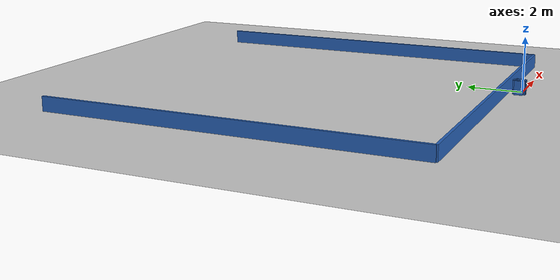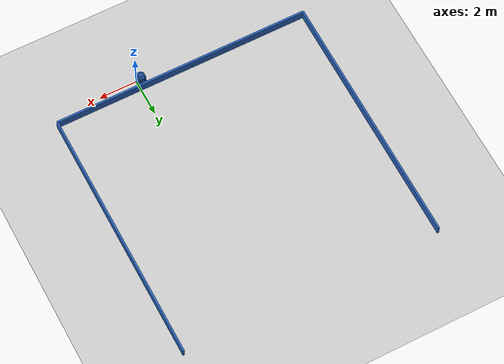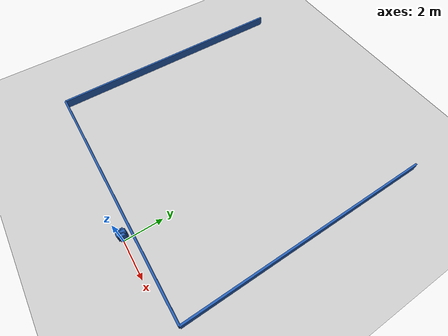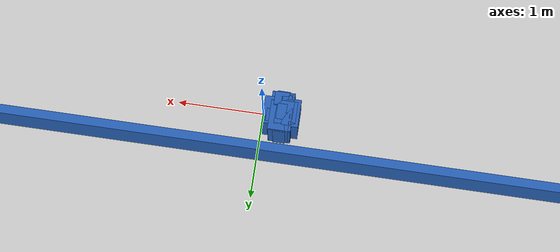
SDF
<?xml version="1.0" ?>
    <sdf version="1.5">
      <world name="default">
        <!-- A global light source -->
        <include>
          <uri>model://sun</uri>
        </include>
        <!-- A ground plane -->
        <include>
          <uri>model://ground_plane</uri>
        </include>

    <model name='libopen_space_final_T2B_67_47'>
      <static>1</static>
      <pose frame=''>-0.225000 0.075000 0.000000 0.000000 0.000000 0.000000</pose>
      <link name='link'>
        <inertial>
          <mass>1</mass>
          <inertia>
            <ixx>0.145833</ixx>
            <ixy>0</ixy>
            <ixz>0</ixz>
            <iyy>0.145833</iyy>
            <iyz>0</iyz>
            <izz>0.125</izz>
          </inertia>
        </inertial>
        <collision name='collision'>
          <geometry>
            <box>
              <size>0.20 0.15 1</size>
            </box>
          </geometry>
          <max_contacts>10</max_contacts>
          <surface>
            <contact>
              <ode/>
            </contact>
            <bounce/>
            <friction>
              <torsional>
                <ode/>
              </torsional>
              <ode/>
            </friction>
          </surface>
        </collision>
        <visual name='visual'>
          <geometry>
            <box>
              <size>0.20 0.15 1</size>
            </box>
          </geometry>
	    <material>
              <ambient>0.152000 0.379000 0.720000 1</ambient>
	      <diffuse>0.152000 0.379000 0.720000 1</diffuse>
          </material>
          <material>
            <script>
              <name>Gazebo/Grey</name>
              <uri>file://media/materials/scripts/gazebo.material</uri>
            </script>
          </material>
        </visual>
        <self_collide>0</self_collide>
        <kinematic>0</kinematic>
        <gravity>1</gravity>
      </link>
      <plugin name='libopen_space_final_T2B_67_47' filename='libopen_space_final_T2B_67_47.so'/>
    </model>

    <model name='libopen_space_final_T2B_113_82'>
      <static>1</static>
      <pose frame=''>-0.225000 0.075000 0.000000 0.000000 0.000000 0.000000</pose>
      <link name='link'>
        <inertial>
          <mass>1</mass>
          <inertia>
            <ixx>0.145833</ixx>
            <ixy>0</ixy>
            <ixz>0</ixz>
            <iyy>0.145833</iyy>
            <iyz>0</iyz>
            <izz>0.125</izz>
          </inertia>
        </inertial>
        <collision name='collision'>
          <geometry>
            <box>
              <size>0.19 0.40 1</size>
            </box>
          </geometry>
          <max_contacts>10</max_contacts>
          <surface>
            <contact>
              <ode/>
            </contact>
            <bounce/>
            <friction>
              <torsional>
                <ode/>
              </torsional>
              <ode/>
            </friction>
          </surface>
        </collision>
        <visual name='visual'>
          <geometry>
            <box>
              <size>0.19 0.40 1</size>
            </box>
          </geometry>
	    <material>
              <ambient>0.152000 0.379000 0.720000 1</ambient>
	      <diffuse>0.152000 0.379000 0.720000 1</diffuse>
          </material>
          <material>
            <script>
              <name>Gazebo/Grey</name>
              <uri>file://media/materials/scripts/gazebo.material</uri>
            </script>
          </material>
        </visual>
        <self_collide>0</self_collide>
        <kinematic>0</kinematic>
        <gravity>1</gravity>
      </link>
      <plugin name='libopen_space_final_T2B_113_82' filename='libopen_space_final_T2B_113_82.so'/>
    </model>

    <model name='libopen_space_final_T2B_91_57'>
      <static>1</static>
      <pose frame=''>-0.225000 0.075000 0.000000 0.000000 0.000000 0.000000</pose>
      <link name='link'>
        <inertial>
          <mass>1</mass>
          <inertia>
            <ixx>0.145833</ixx>
            <ixy>0</ixy>
            <ixz>0</ixz>
            <iyy>0.145833</iyy>
            <iyz>0</iyz>
            <izz>0.125</izz>
          </inertia>
        </inertial>
        <collision name='collision'>
          <geometry>
            <box>
              <size>0.25 0.45 1</size>
            </box>
          </geometry>
          <max_contacts>10</max_contacts>
          <surface>
            <contact>
              <ode/>
            </contact>
            <bounce/>
            <friction>
              <torsional>
                <ode/>
              </torsional>
              <ode/>
            </friction>
          </surface>
        </collision>
        <visual name='visual'>
          <geometry>
            <box>
              <size>0.25 0.45 1</size>
            </box>
          </geometry>
	    <material>
              <ambient>0.152000 0.379000 0.720000 1</ambient>
	      <diffuse>0.152000 0.379000 0.720000 1</diffuse>
          </material>
          <material>
            <script>
              <name>Gazebo/Grey</name>
              <uri>file://media/materials/scripts/gazebo.material</uri>
            </script>
          </material>
        </visual>
        <self_collide>0</self_collide>
        <kinematic>0</kinematic>
        <gravity>1</gravity>
      </link>
      <plugin name='libopen_space_final_T2B_91_57' filename='libopen_space_final_T2B_91_57.so'/>
    </model>

    <model name='libopen_space_final_T2B_79_14'>
      <static>1</static>
      <pose frame=''>-0.225000 0.075000 0.000000 0.000000 0.000000 0.000000</pose>
      <link name='link'>
        <inertial>
          <mass>1</mass>
          <inertia>
            <ixx>0.145833</ixx>
            <ixy>0</ixy>
            <ixz>0</ixz>
            <iyy>0.145833</iyy>
            <iyz>0</iyz>
            <izz>0.125</izz>
          </inertia>
        </inertial>
        <collision name='collision'>
          <geometry>
            <box>
              <size>0.17 0.40 1</size>
            </box>
          </geometry>
          <max_contacts>10</max_contacts>
          <surface>
            <contact>
              <ode/>
            </contact>
            <bounce/>
            <friction>
              <torsional>
                <ode/>
              </torsional>
              <ode/>
            </friction>
          </surface>
        </collision>
        <visual name='visual'>
          <geometry>
            <box>
              <size>0.17 0.40 1</size>
            </box>
          </geometry>
	    <material>
              <ambient>0.152000 0.379000 0.720000 1</ambient>
	      <diffuse>0.152000 0.379000 0.720000 1</diffuse>
          </material>
          <material>
            <script>
              <name>Gazebo/Grey</name>
              <uri>file://media/materials/scripts/gazebo.material</uri>
            </script>
          </material>
        </visual>
        <self_collide>0</self_collide>
        <kinematic>0</kinematic>
        <gravity>1</gravity>
      </link>
      <plugin name='libopen_space_final_T2B_79_14' filename='libopen_space_final_T2B_79_14.so'/>
    </model>

    <model name='libopen_space_final_T2B_99_64'>
      <static>1</static>
      <pose frame=''>-0.225000 0.075000 0.000000 0.000000 0.000000 0.000000</pose>
      <link name='link'>
        <inertial>
          <mass>1</mass>
          <inertia>
            <ixx>0.145833</ixx>
            <ixy>0</ixy>
            <ixz>0</ixz>
            <iyy>0.145833</iyy>
            <iyz>0</iyz>
            <izz>0.125</izz>
          </inertia>
        </inertial>
        <collision name='collision'>
          <geometry>
            <box>
              <size>0.11 0.18 1</size>
            </box>
          </geometry>
          <max_contacts>10</max_contacts>
          <surface>
            <contact>
              <ode/>
            </contact>
            <bounce/>
            <friction>
              <torsional>
                <ode/>
              </torsional>
              <ode/>
            </friction>
          </surface>
        </collision>
        <visual name='visual'>
          <geometry>
            <box>
              <size>0.11 0.18 1</size>
            </box>
          </geometry>
	    <material>
              <ambient>0.152000 0.379000 0.720000 1</ambient>
	      <diffuse>0.152000 0.379000 0.720000 1</diffuse>
          </material>
          <material>
            <script>
              <name>Gazebo/Grey</name>
              <uri>file://media/materials/scripts/gazebo.material</uri>
            </script>
          </material>
        </visual>
        <self_collide>0</self_collide>
        <kinematic>0</kinematic>
        <gravity>1</gravity>
      </link>
      <plugin name='libopen_space_final_T2B_99_64' filename='libopen_space_final_T2B_99_64.so'/>
    </model>

    <model name='libopen_space_final_T2B_120_90'>
      <static>1</static>
      <pose frame=''>-0.225000 0.075000 0.000000 0.000000 0.000000 0.000000</pose>
      <link name='link'>
        <inertial>
          <mass>1</mass>
          <inertia>
            <ixx>0.145833</ixx>
            <ixy>0</ixy>
            <ixz>0</ixz>
            <iyy>0.145833</iyy>
            <iyz>0</iyz>
            <izz>0.125</izz>
          </inertia>
        </inertial>
        <collision name='collision'>
          <geometry>
            <box>
              <size>0.24 0.30 1</size>
            </box>
          </geometry>
          <max_contacts>10</max_contacts>
          <surface>
            <contact>
              <ode/>
            </contact>
            <bounce/>
            <friction>
              <torsional>
                <ode/>
              </torsional>
              <ode/>
            </friction>
          </surface>
        </collision>
        <visual name='visual'>
          <geometry>
            <box>
              <size>0.24 0.30 1</size>
            </box>
          </geometry>
	    <material>
              <ambient>0.152000 0.379000 0.720000 1</ambient>
	      <diffuse>0.152000 0.379000 0.720000 1</diffuse>
          </material>
          <material>
            <script>
              <name>Gazebo/Grey</name>
              <uri>file://media/materials/scripts/gazebo.material</uri>
            </script>
          </material>
        </visual>
        <self_collide>0</self_collide>
        <kinematic>0</kinematic>
        <gravity>1</gravity>
      </link>
      <plugin name='libopen_space_final_T2B_120_90' filename='libopen_space_final_T2B_120_90.so'/>
    </model>

    <model name='libopen_space_final_T2B_92_34'>
      <static>1</static>
      <pose frame=''>-0.225000 0.075000 0.000000 0.000000 0.000000 0.000000</pose>
      <link name='link'>
        <inertial>
          <mass>1</mass>
          <inertia>
            <ixx>0.145833</ixx>
            <ixy>0</ixy>
            <ixz>0</ixz>
            <iyy>0.145833</iyy>
            <iyz>0</iyz>
            <izz>0.125</izz>
          </inertia>
        </inertial>
        <collision name='collision'>
          <geometry>
            <box>
              <size>0.26 0.26 1</size>
            </box>
          </geometry>
          <max_contacts>10</max_contacts>
          <surface>
            <contact>
              <ode/>
            </contact>
            <bounce/>
            <friction>
              <torsional>
                <ode/>
              </torsional>
              <ode/>
            </friction>
          </surface>
        </collision>
        <visual name='visual'>
          <geometry>
            <box>
              <size>0.26 0.26 1</size>
            </box>
          </geometry>
	    <material>
              <ambient>0.152000 0.379000 0.720000 1</ambient>
	      <diffuse>0.152000 0.379000 0.720000 1</diffuse>
          </material>
          <material>
            <script>
              <name>Gazebo/Grey</name>
              <uri>file://media/materials/scripts/gazebo.material</uri>
            </script>
          </material>
        </visual>
        <self_collide>0</self_collide>
        <kinematic>0</kinematic>
        <gravity>1</gravity>
      </link>
      <plugin name='libopen_space_final_T2B_92_34' filename='libopen_space_final_T2B_92_34.so'/>
    </model>

    <model name='libopen_space_final_T2B_52_49'>
      <static>1</static>
      <pose frame=''>-0.225000 0.075000 0.000000 0.000000 0.000000 0.000000</pose>
      <link name='link'>
        <inertial>
          <mass>1</mass>
          <inertia>
            <ixx>0.145833</ixx>
            <ixy>0</ixy>
            <ixz>0</ixz>
            <iyy>0.145833</iyy>
            <iyz>0</iyz>
            <izz>0.125</izz>
          </inertia>
        </inertial>
        <collision name='collision'>
          <geometry>
            <box>
              <size>0.14 0.47 1</size>
            </box>
          </geometry>
          <max_contacts>10</max_contacts>
          <surface>
            <contact>
              <ode/>
            </contact>
            <bounce/>
            <friction>
              <torsional>
                <ode/>
              </torsional>
              <ode/>
            </friction>
          </surface>
        </collision>
        <visual name='visual'>
          <geometry>
            <box>
              <size>0.14 0.47 1</size>
            </box>
          </geometry>
	    <material>
              <ambient>0.152000 0.379000 0.720000 1</ambient>
	      <diffuse>0.152000 0.379000 0.720000 1</diffuse>
          </material>
          <material>
            <script>
              <name>Gazebo/Grey</name>
              <uri>file://media/materials/scripts/gazebo.material</uri>
            </script>
          </material>
        </visual>
        <self_collide>0</self_collide>
        <kinematic>0</kinematic>
        <gravity>1</gravity>
      </link>
      <plugin name='libopen_space_final_T2B_52_49' filename='libopen_space_final_T2B_52_49.so'/>
    </model>

    <model name='libopen_space_final_T2B_73_39'>
      <static>1</static>
      <pose frame=''>-0.225000 0.075000 0.000000 0.000000 0.000000 0.000000</pose>
      <link name='link'>
        <inertial>
          <mass>1</mass>
          <inertia>
            <ixx>0.145833</ixx>
            <ixy>0</ixy>
            <ixz>0</ixz>
            <iyy>0.145833</iyy>
            <iyz>0</iyz>
            <izz>0.125</izz>
          </inertia>
        </inertial>
        <collision name='collision'>
          <geometry>
            <box>
              <size>0.12 0.36 1</size>
            </box>
          </geometry>
          <max_contacts>10</max_contacts>
          <surface>
            <contact>
              <ode/>
            </contact>
            <bounce/>
            <friction>
              <torsional>
                <ode/>
              </torsional>
              <ode/>
            </friction>
          </surface>
        </collision>
        <visual name='visual'>
          <geometry>
            <box>
              <size>0.12 0.36 1</size>
            </box>
          </geometry>
	    <material>
              <ambient>0.152000 0.379000 0.720000 1</ambient>
	      <diffuse>0.152000 0.379000 0.720000 1</diffuse>
          </material>
          <material>
            <script>
              <name>Gazebo/Grey</name>
              <uri>file://media/materials/scripts/gazebo.material</uri>
            </script>
          </material>
        </visual>
        <self_collide>0</self_collide>
        <kinematic>0</kinematic>
        <gravity>1</gravity>
      </link>
      <plugin name='libopen_space_final_T2B_73_39' filename='libopen_space_final_T2B_73_39.so'/>
    </model>

    <model name='libopen_space_final_T2B_125_67'>
      <static>1</static>
      <pose frame=''>-0.225000 0.075000 0.000000 0.000000 0.000000 0.000000</pose>
      <link name='link'>
        <inertial>
          <mass>1</mass>
          <inertia>
            <ixx>0.145833</ixx>
            <ixy>0</ixy>
            <ixz>0</ixz>
            <iyy>0.145833</iyy>
            <iyz>0</iyz>
            <izz>0.125</izz>
          </inertia>
        </inertial>
        <collision name='collision'>
          <geometry>
            <box>
              <size>0.20 0.45 1</size>
            </box>
          </geometry>
          <max_contacts>10</max_contacts>
          <surface>
            <contact>
              <ode/>
            </contact>
            <bounce/>
            <friction>
              <torsional>
                <ode/>
              </torsional>
              <ode/>
            </friction>
          </surface>
        </collision>
        <visual name='visual'>
          <geometry>
            <box>
              <size>0.20 0.45 1</size>
            </box>
          </geometry>
	    <material>
              <ambient>0.152000 0.379000 0.720000 1</ambient>
	      <diffuse>0.152000 0.379000 0.720000 1</diffuse>
          </material>
          <material>
            <script>
              <name>Gazebo/Grey</name>
              <uri>file://media/materials/scripts/gazebo.material</uri>
            </script>
          </material>
        </visual>
        <self_collide>0</self_collide>
        <kinematic>0</kinematic>
        <gravity>1</gravity>
      </link>
      <plugin name='libopen_space_final_T2B_125_67' filename='libopen_space_final_T2B_125_67.so'/>
    </model>

    <model name='libopen_space_final_T2B_77_65'>
      <static>1</static>
      <pose frame=''>-0.225000 0.075000 0.000000 0.000000 0.000000 0.000000</pose>
      <link name='link'>
        <inertial>
          <mass>1</mass>
          <inertia>
            <ixx>0.145833</ixx>
            <ixy>0</ixy>
            <ixz>0</ixz>
            <iyy>0.145833</iyy>
            <iyz>0</iyz>
            <izz>0.125</izz>
          </inertia>
        </inertial>
        <collision name='collision'>
          <geometry>
            <box>
              <size>0.33 0.26 1</size>
            </box>
          </geometry>
          <max_contacts>10</max_contacts>
          <surface>
            <contact>
              <ode/>
            </contact>
            <bounce/>
            <friction>
              <torsional>
                <ode/>
              </torsional>
              <ode/>
            </friction>
          </surface>
        </collision>
        <visual name='visual'>
          <geometry>
            <box>
              <size>0.33 0.26 1</size>
            </box>
          </geometry>
	    <material>
              <ambient>0.152000 0.379000 0.720000 1</ambient>
	      <diffuse>0.152000 0.379000 0.720000 1</diffuse>
          </material>
          <material>
            <script>
              <name>Gazebo/Grey</name>
              <uri>file://media/materials/scripts/gazebo.material</uri>
            </script>
          </material>
        </visual>
        <self_collide>0</self_collide>
        <kinematic>0</kinematic>
        <gravity>1</gravity>
      </link>
      <plugin name='libopen_space_final_T2B_77_65' filename='libopen_space_final_T2B_77_65.so'/>
    </model>

    <model name='libopen_space_final_T2B_125_48'>
      <static>1</static>
      <pose frame=''>-0.225000 0.075000 0.000000 0.000000 0.000000 0.000000</pose>
      <link name='link'>
        <inertial>
          <mass>1</mass>
          <inertia>
            <ixx>0.145833</ixx>
            <ixy>0</ixy>
            <ixz>0</ixz>
            <iyy>0.145833</iyy>
            <iyz>0</iyz>
            <izz>0.125</izz>
          </inertia>
        </inertial>
        <collision name='collision'>
          <geometry>
            <box>
              <size>0.34 0.26 1</size>
            </box>
          </geometry>
          <max_contacts>10</max_contacts>
          <surface>
            <contact>
              <ode/>
            </contact>
            <bounce/>
            <friction>
              <torsional>
                <ode/>
              </torsional>
              <ode/>
            </friction>
          </surface>
        </collision>
        <visual name='visual'>
          <geometry>
            <box>
              <size>0.34 0.26 1</size>
            </box>
          </geometry>
	    <material>
              <ambient>0.152000 0.379000 0.720000 1</ambient>
	      <diffuse>0.152000 0.379000 0.720000 1</diffuse>
          </material>
          <material>
            <script>
              <name>Gazebo/Grey</name>
              <uri>file://media/materials/scripts/gazebo.material</uri>
            </script>
          </material>
        </visual>
        <self_collide>0</self_collide>
        <kinematic>0</kinematic>
        <gravity>1</gravity>
      </link>
      <plugin name='libopen_space_final_T2B_125_48' filename='libopen_space_final_T2B_125_48.so'/>
    </model>

    <model name='libopen_space_final_T2B_56_75'>
      <static>1</static>
      <pose frame=''>-0.225000 0.075000 0.000000 0.000000 0.000000 0.000000</pose>
      <link name='link'>
        <inertial>
          <mass>1</mass>
          <inertia>
            <ixx>0.145833</ixx>
            <ixy>0</ixy>
            <ixz>0</ixz>
            <iyy>0.145833</iyy>
            <iyz>0</iyz>
            <izz>0.125</izz>
          </inertia>
        </inertial>
        <collision name='collision'>
          <geometry>
            <box>
              <size>0.26 0.44 1</size>
            </box>
          </geometry>
          <max_contacts>10</max_contacts>
          <surface>
            <contact>
              <ode/>
            </contact>
            <bounce/>
            <friction>
              <torsional>
                <ode/>
              </torsional>
              <ode/>
            </friction>
          </surface>
        </collision>
        <visual name='visual'>
          <geometry>
            <box>
              <size>0.26 0.44 1</size>
            </box>
          </geometry>
	    <material>
              <ambient>0.152000 0.379000 0.720000 1</ambient>
	      <diffuse>0.152000 0.379000 0.720000 1</diffuse>
          </material>
          <material>
            <script>
              <name>Gazebo/Grey</name>
              <uri>file://media/materials/scripts/gazebo.material</uri>
            </script>
          </material>
        </visual>
        <self_collide>0</self_collide>
        <kinematic>0</kinematic>
        <gravity>1</gravity>
      </link>
      <plugin name='libopen_space_final_T2B_56_75' filename='libopen_space_final_T2B_56_75.so'/>
    </model>

    <model name='libopen_space_final_T2B_114_22'>
      <static>1</static>
      <pose frame=''>-0.225000 0.075000 0.000000 0.000000 0.000000 0.000000</pose>
      <link name='link'>
        <inertial>
          <mass>1</mass>
          <inertia>
            <ixx>0.145833</ixx>
            <ixy>0</ixy>
            <ixz>0</ixz>
            <iyy>0.145833</iyy>
            <iyz>0</iyz>
            <izz>0.125</izz>
          </inertia>
        </inertial>
        <collision name='collision'>
          <geometry>
            <box>
              <size>0.41 0.32 1</size>
            </box>
          </geometry>
          <max_contacts>10</max_contacts>
          <surface>
            <contact>
              <ode/>
            </contact>
            <bounce/>
            <friction>
              <torsional>
                <ode/>
              </torsional>
              <ode/>
            </friction>
          </surface>
        </collision>
        <visual name='visual'>
          <geometry>
            <box>
              <size>0.41 0.32 1</size>
            </box>
          </geometry>
	    <material>
              <ambient>0.152000 0.379000 0.720000 1</ambient>
	      <diffuse>0.152000 0.379000 0.720000 1</diffuse>
          </material>
          <material>
            <script>
              <name>Gazebo/Grey</name>
              <uri>file://media/materials/scripts/gazebo.material</uri>
            </script>
          </material>
        </visual>
        <self_collide>0</self_collide>
        <kinematic>0</kinematic>
        <gravity>1</gravity>
      </link>
      <plugin name='libopen_space_final_T2B_114_22' filename='libopen_space_final_T2B_114_22.so'/>
    </model>

        <model name='bottom_wall'>
          <static>1</static>
          <pose frame=''>-2.25 0.5 0.000000 0.000000 0.000000 1.57079632</pose>
          <link name='link'>
            <inertial>
            <mass>1</mass>
            <inertia>
              <ixx>0.145833</ixx>
              <ixy>0</ixy>
              <ixz>0</ixz>
              <iyy>0.145833</iyy>
              <iyz>0</iyz>
              <izz>0.125</izz>
            </inertia>
            </inertial>
            <collision name='collision'>
            <geometry>
              <box>
              <size>0.1 13.5 1</size>
              </box>
            </geometry>
            <max_contacts>10</max_contacts>
            <surface>
              <contact>
              <ode/>
              </contact>
              <bounce/>
              <friction>
              <torsional>
                <ode/>
              </torsional>
              <ode/>
              </friction>
            </surface>
            </collision>
            <visual name='visual'>
            <geometry>
              <box>
              <size>0.1 13.5 1</size>
              </box>
            </geometry>
            <material>
              <ambient>0.152000 0.379000 0.720000 1</ambient>
            <diffuse>0.152000 0.379000 0.720000 1</diffuse>
            </material>
            <material>
              <script>
              <name>Gazebo/Grey</name>
              <uri>file://media/materials/scripts/gazebo.material</uri>
              </script>
            </material>
            </visual>
            <self_collide>0</self_collide>
            <kinematic>0</kinematic>
            <gravity>1</gravity>
          </link>
        </model>

        <model name='left_wall'>
          <static>1</static>
          <pose frame=''>-9 7.25 0.000000 0.000000 0.000000 0.000000</pose>
          <link name='link'>
            <inertial>
            <mass>1</mass>
            <inertia>
              <ixx>0.145833</ixx>
              <ixy>0</ixy>
              <ixz>0</ixz>
              <iyy>0.145833</iyy>
              <iyz>0</iyz>
              <izz>0.125</izz>
            </inertia>
            </inertial>
            <collision name='collision'>
            <geometry>
              <box>
              <size>0.1 13.5 1</size>
              </box>
            </geometry>
            <max_contacts>10</max_contacts>
            <surface>
              <contact>
              <ode/>
              </contact>
              <bounce/>
              <friction>
              <torsional>
                <ode/>
              </torsional>
              <ode/>
              </friction>
            </surface>
            </collision>
            <visual name='visual'>
            <geometry>
              <box>
              <size>0.1 13.5 1</size>
              </box>
            </geometry>
            <material>
              <ambient>0.152000 0.379000 0.720000 1</ambient>
            <diffuse>0.152000 0.379000 0.720000 1</diffuse>
            </material>
            <material>
              <script>
              <name>Gazebo/Grey</name>
              <uri>file://media/materials/scripts/gazebo.material</uri>
              </script>
            </material>
            </visual>
            <self_collide>0</self_collide>
            <kinematic>0</kinematic>
            <gravity>1</gravity>
          </link>
        </model>

        <model name='right_wall'>
          <static>1</static>
          <pose frame=''>4.5 7.25 0.000000 0.000000 0.000000 0.000000</pose>
          <link name='link'>
            <inertial>
            <mass>1</mass>
            <inertia>
              <ixx>0.145833</ixx>
              <ixy>0</ixy>
              <ixz>0</ixz>
              <iyy>0.145833</iyy>
              <iyz>0</iyz>
              <izz>0.125</izz>
            </inertia>
            </inertial>
            <collision name='collision'>
            <geometry>
              <box>
              <size>0.1 13.5 1</size>
              </box>
            </geometry>
            <max_contacts>10</max_contacts>
            <surface>
              <contact>
              <ode/>
              </contact>
              <bounce/>
              <friction>
              <torsional>
                <ode/>
              </torsional>
              <ode/>
              </friction>
            </surface>
            </collision>
            <visual name='visual'>
            <geometry>
              <box>
              <size>0.1 13.5 1</size>
              </box>
            </geometry>
            <material>
              <ambient>0.152000 0.379000 0.720000 1</ambient>
            <diffuse>0.152000 0.379000 0.720000 1</diffuse>
            </material>
            <material>
              <script>
              <name>Gazebo/Grey</name>
              <uri>file://media/materials/scripts/gazebo.material</uri>
              </script>
            </material>
            </visual>
            <self_collide>0</self_collide>
            <kinematic>0</kinematic>
            <gravity>1</gravity>
          </link>
        </model>

      </world>
    </sdf>"
